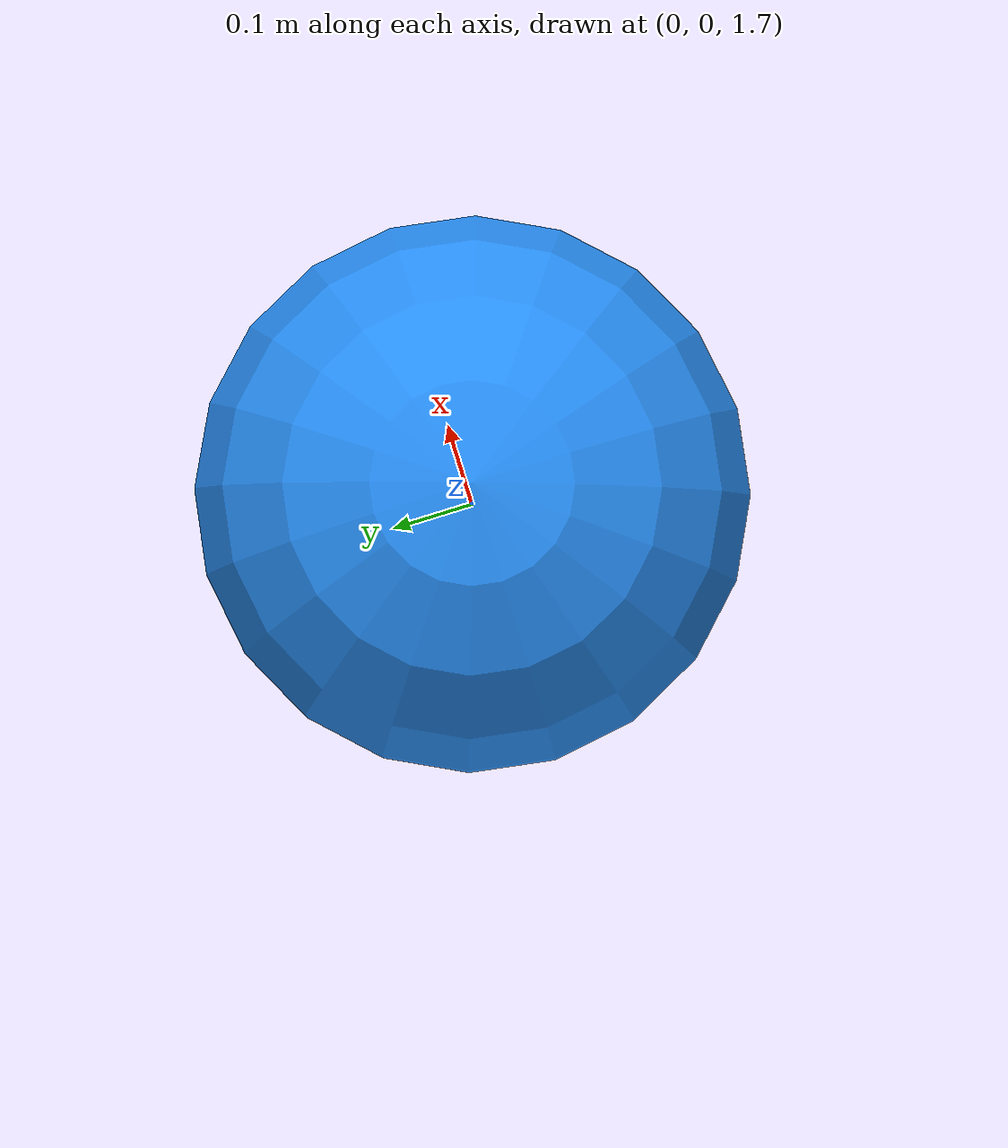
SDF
<?xml version="1.0"?>
<sdf version="1.9">
  <model name="arc_marker_composition">
    <static>true</static>
    <pose>0.0 0.0 2.0 0 0 0</pose>
    <link name="marker_link">
      <visual name="marker_visual">
        <geometry>
          <sphere>
            <radius>0.28</radius>
          </sphere>
        </geometry>
        <material>
          <ambient>0.15 0.55 0.95 1.0</ambient>
          <diffuse>0.15 0.55 0.95 1.0</diffuse>
        </material>
      </visual>
      <collision name="marker_collision">
        <geometry>
          <sphere>
            <radius>0.28</radius>
          </sphere>
        </geometry>
      </collision>
    </link>
  </model>
</sdf>
